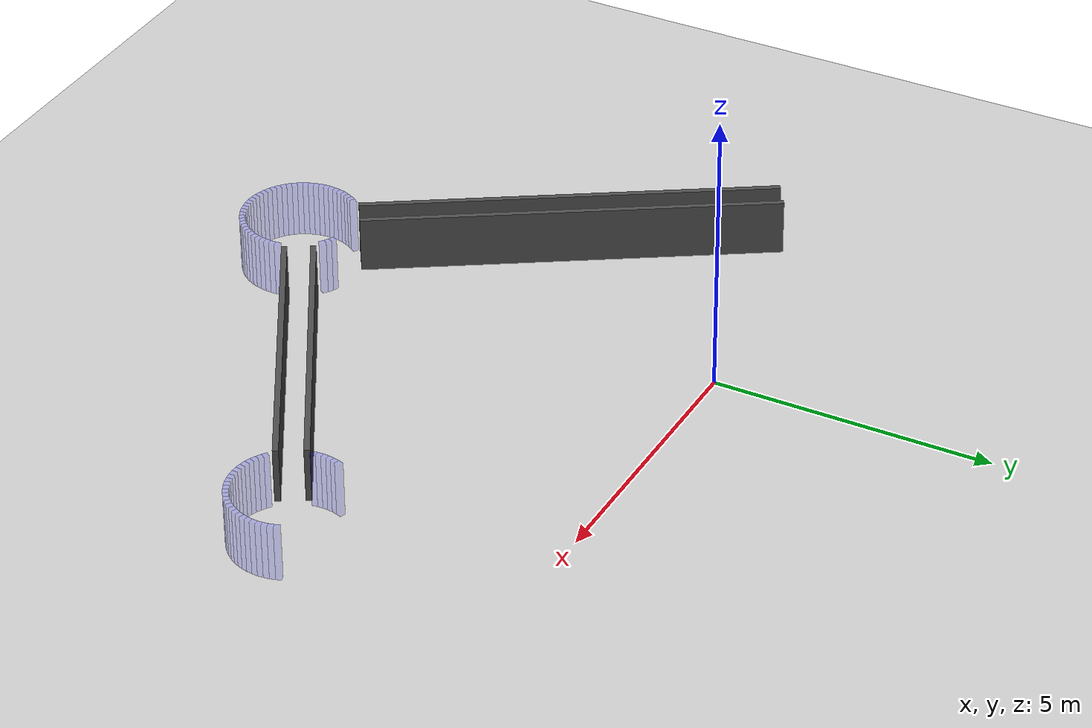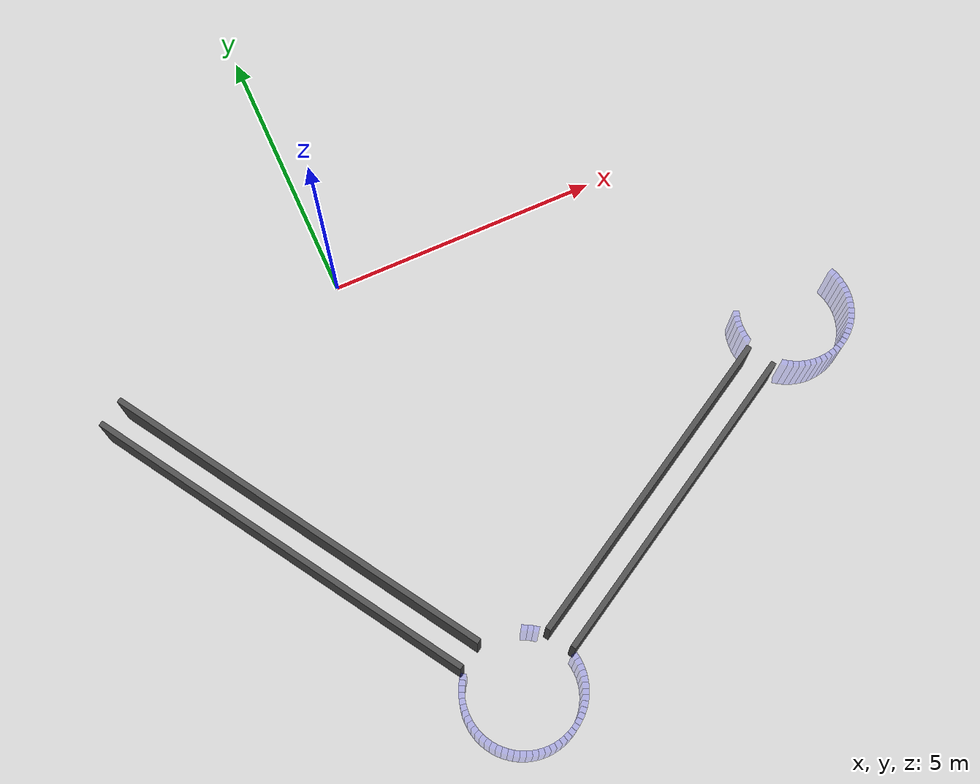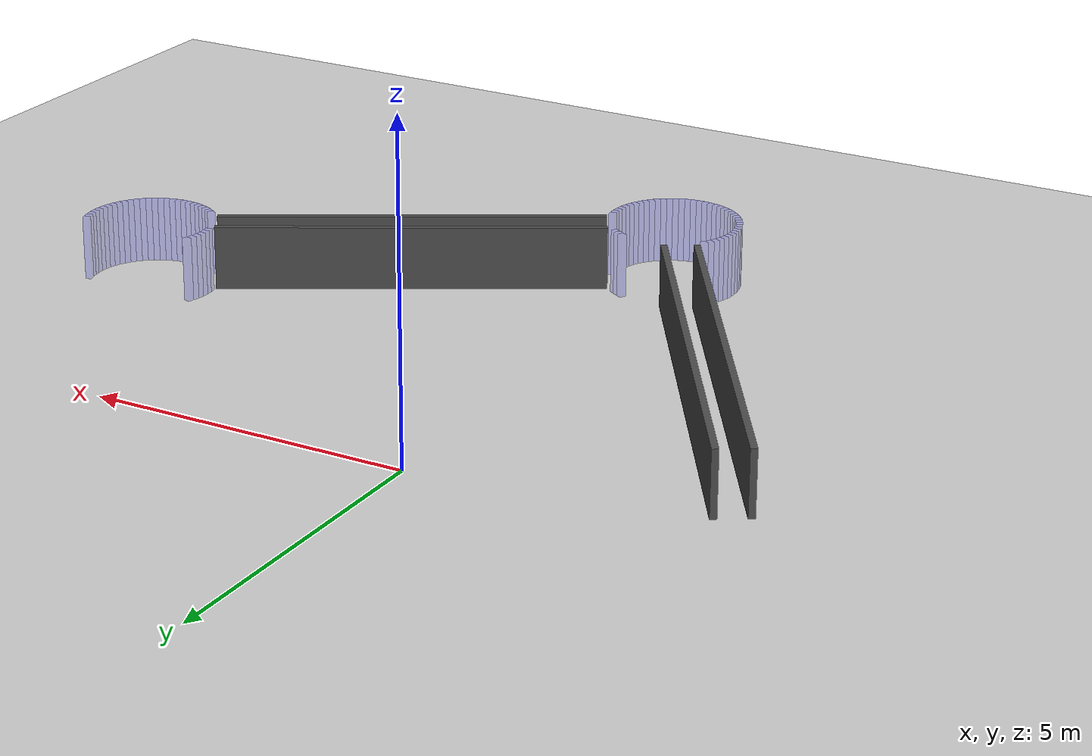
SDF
<sdf version="1.6">
 <world name="graph_routes">
  <include><uri>model://ground_plane</uri></include>
  <include><uri>model://sun</uri></include>
  <model name="node_A_seg0">
   <static>true</static>
   <pose>-0.998795 -8.049068 0.500 0 0 -1.521708941583</pose>
   <link name="link">
    <visual name="vis">
     <geometry><box><size>0.09817477042468103 0.1 1.0</size></box></geometry>
     <material>
      <ambient>0 0 1 0.05</ambient>
      <diffuse>0 0 1 0.05</diffuse>
      <specular>0.1 0.1 0.1 1</specular>
      <emissive>0 0 0 1</emissive>
     </material>
    </visual>
    <collision name="col"><geometry><box><size>0.09817477042468103 0.1 1.0</size></box></geometry></collision>
   </link>
  </model>
  <model name="node_A_seg1">
   <static>true</static>
   <pose>-0.989177 -8.146730 0.500 0 0 -1.423534171158</pose>
   <link name="link">
    <visual name="vis">
     <geometry><box><size>0.09817477042468103 0.1 1.0</size></box></geometry>
     <material>
      <ambient>0 0 1 0.05</ambient>
      <diffuse>0 0 1 0.05</diffuse>
      <specular>0.1 0.1 0.1 1</specular>
      <emissive>0 0 0 1</emissive>
     </material>
    </visual>
    <collision name="col"><geometry><box><size>0.09817477042468103 0.1 1.0</size></box></geometry></collision>
   </link>
  </model>
  <model name="node_A_seg2">
   <static>true</static>
   <pose>-0.970031 -8.242980 0.500 0 0 -1.325359400733</pose>
   <link name="link">
    <visual name="vis">
     <geometry><box><size>0.09817477042468103 0.1 1.0</size></box></geometry>
     <material>
      <ambient>0 0 1 0.05</ambient>
      <diffuse>0 0 1 0.05</diffuse>
      <specular>0.1 0.1 0.1 1</specular>
      <emissive>0 0 0 1</emissive>
     </material>
    </visual>
    <collision name="col"><geometry><box><size>0.09817477042468103 0.1 1.0</size></box></geometry></collision>
   </link>
  </model>
  <model name="node_A_seg3">
   <static>true</static>
   <pose>-0.941544 -8.336890 0.500 0 0 -1.227184630309</pose>
   <link name="link">
    <visual name="vis">
     <geometry><box><size>0.09817477042468103 0.1 1.0</size></box></geometry>
     <material>
      <ambient>0 0 1 0.05</ambient>
      <diffuse>0 0 1 0.05</diffuse>
      <specular>0.1 0.1 0.1 1</specular>
      <emissive>0 0 0 1</emissive>
     </material>
    </visual>
    <collision name="col"><geometry><box><size>0.09817477042468103 0.1 1.0</size></box></geometry></collision>
   </link>
  </model>
  <model name="node_A_seg4">
   <static>true</static>
   <pose>-0.903989 -8.427555 0.500 0 0 -1.129009859884</pose>
   <link name="link">
    <visual name="vis">
     <geometry><box><size>0.09817477042468103 0.1 1.0</size></box></geometry>
     <material>
      <ambient>0 0 1 0.05</ambient>
      <diffuse>0 0 1 0.05</diffuse>
      <specular>0.1 0.1 0.1 1</specular>
      <emissive>0 0 0 1</emissive>
     </material>
    </visual>
    <collision name="col"><geometry><box><size>0.09817477042468103 0.1 1.0</size></box></geometry></collision>
   </link>
  </model>
  <model name="node_A_seg5">
   <static>true</static>
   <pose>-0.857729 -8.514103 0.500 0 0 -1.030835089459</pose>
   <link name="link">
    <visual name="vis">
     <geometry><box><size>0.09817477042468103 0.1 1.0</size></box></geometry>
     <material>
      <ambient>0 0 1 0.05</ambient>
      <diffuse>0 0 1 0.05</diffuse>
      <specular>0.1 0.1 0.1 1</specular>
      <emissive>0 0 0 1</emissive>
     </material>
    </visual>
    <collision name="col"><geometry><box><size>0.09817477042468103 0.1 1.0</size></box></geometry></collision>
   </link>
  </model>
  <model name="node_A_seg6">
   <static>true</static>
   <pose>-0.803208 -8.595699 0.500 0 0 -0.932660319034</pose>
   <link name="link">
    <visual name="vis">
     <geometry><box><size>0.09817477042468103 0.1 1.0</size></box></geometry>
     <material>
      <ambient>0 0 1 0.05</ambient>
      <diffuse>0 0 1 0.05</diffuse>
      <specular>0.1 0.1 0.1 1</specular>
      <emissive>0 0 0 1</emissive>
     </material>
    </visual>
    <collision name="col"><geometry><box><size>0.09817477042468103 0.1 1.0</size></box></geometry></collision>
   </link>
  </model>
  <model name="node_A_seg7">
   <static>true</static>
   <pose>-0.740951 -8.671559 0.500 0 0 -0.834485548610</pose>
   <link name="link">
    <visual name="vis">
     <geometry><box><size>0.09817477042468103 0.1 1.0</size></box></geometry>
     <material>
      <ambient>0 0 1 0.05</ambient>
      <diffuse>0 0 1 0.05</diffuse>
      <specular>0.1 0.1 0.1 1</specular>
      <emissive>0 0 0 1</emissive>
     </material>
    </visual>
    <collision name="col"><geometry><box><size>0.09817477042468103 0.1 1.0</size></box></geometry></collision>
   </link>
  </model>
  <model name="node_A_seg8">
   <static>true</static>
   <pose>-0.671559 -8.740951 0.500 0 0 -0.736310778185</pose>
   <link name="link">
    <visual name="vis">
     <geometry><box><size>0.09817477042468103 0.1 1.0</size></box></geometry>
     <material>
      <ambient>0 0 1 0.05</ambient>
      <diffuse>0 0 1 0.05</diffuse>
      <specular>0.1 0.1 0.1 1</specular>
      <emissive>0 0 0 1</emissive>
     </material>
    </visual>
    <collision name="col"><geometry><box><size>0.09817477042468103 0.1 1.0</size></box></geometry></collision>
   </link>
  </model>
  <model name="node_A_seg9">
   <static>true</static>
   <pose>-0.595699 -8.803208 0.500 0 0 -0.638136007760</pose>
   <link name="link">
    <visual name="vis">
     <geometry><box><size>0.09817477042468103 0.1 1.0</size></box></geometry>
     <material>
      <ambient>0 0 1 0.05</ambient>
      <diffuse>0 0 1 0.05</diffuse>
      <specular>0.1 0.1 0.1 1</specular>
      <emissive>0 0 0 1</emissive>
     </material>
    </visual>
    <collision name="col"><geometry><box><size>0.09817477042468103 0.1 1.0</size></box></geometry></collision>
   </link>
  </model>
  <model name="node_A_seg10">
   <static>true</static>
   <pose>-0.514103 -8.857729 0.500 0 0 -0.539961237336</pose>
   <link name="link">
    <visual name="vis">
     <geometry><box><size>0.09817477042468103 0.1 1.0</size></box></geometry>
     <material>
      <ambient>0 0 1 0.05</ambient>
      <diffuse>0 0 1 0.05</diffuse>
      <specular>0.1 0.1 0.1 1</specular>
      <emissive>0 0 0 1</emissive>
     </material>
    </visual>
    <collision name="col"><geometry><box><size>0.09817477042468103 0.1 1.0</size></box></geometry></collision>
   </link>
  </model>
  <model name="node_A_seg11">
   <static>true</static>
   <pose>-0.427555 -8.903989 0.500 0 0 -0.441786466911</pose>
   <link name="link">
    <visual name="vis">
     <geometry><box><size>0.09817477042468103 0.1 1.0</size></box></geometry>
     <material>
      <ambient>0 0 1 0.05</ambient>
      <diffuse>0 0 1 0.05</diffuse>
      <specular>0.1 0.1 0.1 1</specular>
      <emissive>0 0 0 1</emissive>
     </material>
    </visual>
    <collision name="col"><geometry><box><size>0.09817477042468103 0.1 1.0</size></box></geometry></collision>
   </link>
  </model>
  <model name="node_A_seg12">
   <static>true</static>
   <pose>-0.336890 -8.941544 0.500 0 0 -0.343611696486</pose>
   <link name="link">
    <visual name="vis">
     <geometry><box><size>0.09817477042468103 0.1 1.0</size></box></geometry>
     <material>
      <ambient>0 0 1 0.05</ambient>
      <diffuse>0 0 1 0.05</diffuse>
      <specular>0.1 0.1 0.1 1</specular>
      <emissive>0 0 0 1</emissive>
     </material>
    </visual>
    <collision name="col"><geometry><box><size>0.09817477042468103 0.1 1.0</size></box></geometry></collision>
   </link>
  </model>
  <model name="node_A_seg13">
   <static>true</static>
   <pose>-0.242980 -8.970031 0.500 0 0 -0.245436926062</pose>
   <link name="link">
    <visual name="vis">
     <geometry><box><size>0.09817477042468103 0.1 1.0</size></box></geometry>
     <material>
      <ambient>0 0 1 0.05</ambient>
      <diffuse>0 0 1 0.05</diffuse>
      <specular>0.1 0.1 0.1 1</specular>
      <emissive>0 0 0 1</emissive>
     </material>
    </visual>
    <collision name="col"><geometry><box><size>0.09817477042468103 0.1 1.0</size></box></geometry></collision>
   </link>
  </model>
  <model name="node_A_seg14">
   <static>true</static>
   <pose>-0.146730 -8.989177 0.500 0 0 -0.147262155637</pose>
   <link name="link">
    <visual name="vis">
     <geometry><box><size>0.09817477042468103 0.1 1.0</size></box></geometry>
     <material>
      <ambient>0 0 1 0.05</ambient>
      <diffuse>0 0 1 0.05</diffuse>
      <specular>0.1 0.1 0.1 1</specular>
      <emissive>0 0 0 1</emissive>
     </material>
    </visual>
    <collision name="col"><geometry><box><size>0.09817477042468103 0.1 1.0</size></box></geometry></collision>
   </link>
  </model>
  <model name="node_A_seg15">
   <static>true</static>
   <pose>-0.049068 -8.998795 0.500 0 0 -0.049087385212</pose>
   <link name="link">
    <visual name="vis">
     <geometry><box><size>0.09817477042468103 0.1 1.0</size></box></geometry>
     <material>
      <ambient>0 0 1 0.05</ambient>
      <diffuse>0 0 1 0.05</diffuse>
      <specular>0.1 0.1 0.1 1</specular>
      <emissive>0 0 0 1</emissive>
     </material>
    </visual>
    <collision name="col"><geometry><box><size>0.09817477042468103 0.1 1.0</size></box></geometry></collision>
   </link>
  </model>
  <model name="node_A_seg16">
   <static>true</static>
   <pose>0.049068 -8.998795 0.500 0 0 0.049087385212</pose>
   <link name="link">
    <visual name="vis">
     <geometry><box><size>0.09817477042468103 0.1 1.0</size></box></geometry>
     <material>
      <ambient>0 0 1 0.05</ambient>
      <diffuse>0 0 1 0.05</diffuse>
      <specular>0.1 0.1 0.1 1</specular>
      <emissive>0 0 0 1</emissive>
     </material>
    </visual>
    <collision name="col"><geometry><box><size>0.09817477042468103 0.1 1.0</size></box></geometry></collision>
   </link>
  </model>
  <model name="node_A_seg17">
   <static>true</static>
   <pose>0.146730 -8.989177 0.500 0 0 0.147262155637</pose>
   <link name="link">
    <visual name="vis">
     <geometry><box><size>0.09817477042468103 0.1 1.0</size></box></geometry>
     <material>
      <ambient>0 0 1 0.05</ambient>
      <diffuse>0 0 1 0.05</diffuse>
      <specular>0.1 0.1 0.1 1</specular>
      <emissive>0 0 0 1</emissive>
     </material>
    </visual>
    <collision name="col"><geometry><box><size>0.09817477042468103 0.1 1.0</size></box></geometry></collision>
   </link>
  </model>
  <model name="node_A_seg18">
   <static>true</static>
   <pose>0.242980 -8.970031 0.500 0 0 0.245436926062</pose>
   <link name="link">
    <visual name="vis">
     <geometry><box><size>0.09817477042468103 0.1 1.0</size></box></geometry>
     <material>
      <ambient>0 0 1 0.05</ambient>
      <diffuse>0 0 1 0.05</diffuse>
      <specular>0.1 0.1 0.1 1</specular>
      <emissive>0 0 0 1</emissive>
     </material>
    </visual>
    <collision name="col"><geometry><box><size>0.09817477042468103 0.1 1.0</size></box></geometry></collision>
   </link>
  </model>
  <model name="node_A_seg19">
   <static>true</static>
   <pose>0.336890 -8.941544 0.500 0 0 0.343611696486</pose>
   <link name="link">
    <visual name="vis">
     <geometry><box><size>0.09817477042468103 0.1 1.0</size></box></geometry>
     <material>
      <ambient>0 0 1 0.05</ambient>
      <diffuse>0 0 1 0.05</diffuse>
      <specular>0.1 0.1 0.1 1</specular>
      <emissive>0 0 0 1</emissive>
     </material>
    </visual>
    <collision name="col"><geometry><box><size>0.09817477042468103 0.1 1.0</size></box></geometry></collision>
   </link>
  </model>
  <model name="node_A_seg20">
   <static>true</static>
   <pose>0.427555 -8.903989 0.500 0 0 0.441786466911</pose>
   <link name="link">
    <visual name="vis">
     <geometry><box><size>0.09817477042468103 0.1 1.0</size></box></geometry>
     <material>
      <ambient>0 0 1 0.05</ambient>
      <diffuse>0 0 1 0.05</diffuse>
      <specular>0.1 0.1 0.1 1</specular>
      <emissive>0 0 0 1</emissive>
     </material>
    </visual>
    <collision name="col"><geometry><box><size>0.09817477042468103 0.1 1.0</size></box></geometry></collision>
   </link>
  </model>
  <model name="node_A_seg21">
   <static>true</static>
   <pose>0.514103 -8.857729 0.500 0 0 0.539961237336</pose>
   <link name="link">
    <visual name="vis">
     <geometry><box><size>0.09817477042468103 0.1 1.0</size></box></geometry>
     <material>
      <ambient>0 0 1 0.05</ambient>
      <diffuse>0 0 1 0.05</diffuse>
      <specular>0.1 0.1 0.1 1</specular>
      <emissive>0 0 0 1</emissive>
     </material>
    </visual>
    <collision name="col"><geometry><box><size>0.09817477042468103 0.1 1.0</size></box></geometry></collision>
   </link>
  </model>
  <model name="node_A_seg22">
   <static>true</static>
   <pose>0.595699 -8.803208 0.500 0 0 0.638136007760</pose>
   <link name="link">
    <visual name="vis">
     <geometry><box><size>0.09817477042468103 0.1 1.0</size></box></geometry>
     <material>
      <ambient>0 0 1 0.05</ambient>
      <diffuse>0 0 1 0.05</diffuse>
      <specular>0.1 0.1 0.1 1</specular>
      <emissive>0 0 0 1</emissive>
     </material>
    </visual>
    <collision name="col"><geometry><box><size>0.09817477042468103 0.1 1.0</size></box></geometry></collision>
   </link>
  </model>
  <model name="node_A_seg23">
   <static>true</static>
   <pose>0.671559 -8.740951 0.500 0 0 0.736310778185</pose>
   <link name="link">
    <visual name="vis">
     <geometry><box><size>0.09817477042468103 0.1 1.0</size></box></geometry>
     <material>
      <ambient>0 0 1 0.05</ambient>
      <diffuse>0 0 1 0.05</diffuse>
      <specular>0.1 0.1 0.1 1</specular>
      <emissive>0 0 0 1</emissive>
     </material>
    </visual>
    <collision name="col"><geometry><box><size>0.09817477042468103 0.1 1.0</size></box></geometry></collision>
   </link>
  </model>
  <model name="node_A_seg24">
   <static>true</static>
   <pose>0.740951 -8.671559 0.500 0 0 0.834485548610</pose>
   <link name="link">
    <visual name="vis">
     <geometry><box><size>0.09817477042468103 0.1 1.0</size></box></geometry>
     <material>
      <ambient>0 0 1 0.05</ambient>
      <diffuse>0 0 1 0.05</diffuse>
      <specular>0.1 0.1 0.1 1</specular>
      <emissive>0 0 0 1</emissive>
     </material>
    </visual>
    <collision name="col"><geometry><box><size>0.09817477042468103 0.1 1.0</size></box></geometry></collision>
   </link>
  </model>
  <model name="node_A_seg25">
   <static>true</static>
   <pose>0.803208 -8.595699 0.500 0 0 0.932660319034</pose>
   <link name="link">
    <visual name="vis">
     <geometry><box><size>0.09817477042468103 0.1 1.0</size></box></geometry>
     <material>
      <ambient>0 0 1 0.05</ambient>
      <diffuse>0 0 1 0.05</diffuse>
      <specular>0.1 0.1 0.1 1</specular>
      <emissive>0 0 0 1</emissive>
     </material>
    </visual>
    <collision name="col"><geometry><box><size>0.09817477042468103 0.1 1.0</size></box></geometry></collision>
   </link>
  </model>
  <model name="node_A_seg26">
   <static>true</static>
   <pose>0.857729 -8.514103 0.500 0 0 1.030835089459</pose>
   <link name="link">
    <visual name="vis">
     <geometry><box><size>0.09817477042468103 0.1 1.0</size></box></geometry>
     <material>
      <ambient>0 0 1 0.05</ambient>
      <diffuse>0 0 1 0.05</diffuse>
      <specular>0.1 0.1 0.1 1</specular>
      <emissive>0 0 0 1</emissive>
     </material>
    </visual>
    <collision name="col"><geometry><box><size>0.09817477042468103 0.1 1.0</size></box></geometry></collision>
   </link>
  </model>
  <model name="node_A_seg27">
   <static>true</static>
   <pose>0.903989 -8.427555 0.500 0 0 1.129009859884</pose>
   <link name="link">
    <visual name="vis">
     <geometry><box><size>0.09817477042468103 0.1 1.0</size></box></geometry>
     <material>
      <ambient>0 0 1 0.05</ambient>
      <diffuse>0 0 1 0.05</diffuse>
      <specular>0.1 0.1 0.1 1</specular>
      <emissive>0 0 0 1</emissive>
     </material>
    </visual>
    <collision name="col"><geometry><box><size>0.09817477042468103 0.1 1.0</size></box></geometry></collision>
   </link>
  </model>
  <model name="node_A_seg28">
   <static>true</static>
   <pose>0.941544 -8.336890 0.500 0 0 1.227184630309</pose>
   <link name="link">
    <visual name="vis">
     <geometry><box><size>0.09817477042468103 0.1 1.0</size></box></geometry>
     <material>
      <ambient>0 0 1 0.05</ambient>
      <diffuse>0 0 1 0.05</diffuse>
      <specular>0.1 0.1 0.1 1</specular>
      <emissive>0 0 0 1</emissive>
     </material>
    </visual>
    <collision name="col"><geometry><box><size>0.09817477042468103 0.1 1.0</size></box></geometry></collision>
   </link>
  </model>
  <model name="node_A_seg29">
   <static>true</static>
   <pose>0.970031 -8.242980 0.500 0 0 1.325359400733</pose>
   <link name="link">
    <visual name="vis">
     <geometry><box><size>0.09817477042468103 0.1 1.0</size></box></geometry>
     <material>
      <ambient>0 0 1 0.05</ambient>
      <diffuse>0 0 1 0.05</diffuse>
      <specular>0.1 0.1 0.1 1</specular>
      <emissive>0 0 0 1</emissive>
     </material>
    </visual>
    <collision name="col"><geometry><box><size>0.09817477042468103 0.1 1.0</size></box></geometry></collision>
   </link>
  </model>
  <model name="node_A_seg30">
   <static>true</static>
   <pose>0.989177 -8.146730 0.500 0 0 1.423534171158</pose>
   <link name="link">
    <visual name="vis">
     <geometry><box><size>0.09817477042468103 0.1 1.0</size></box></geometry>
     <material>
      <ambient>0 0 1 0.05</ambient>
      <diffuse>0 0 1 0.05</diffuse>
      <specular>0.1 0.1 0.1 1</specular>
      <emissive>0 0 0 1</emissive>
     </material>
    </visual>
    <collision name="col"><geometry><box><size>0.09817477042468103 0.1 1.0</size></box></geometry></collision>
   </link>
  </model>
  <model name="node_A_seg31">
   <static>true</static>
   <pose>0.998795 -8.049068 0.500 0 0 1.521708941583</pose>
   <link name="link">
    <visual name="vis">
     <geometry><box><size>0.09817477042468103 0.1 1.0</size></box></geometry>
     <material>
      <ambient>0 0 1 0.05</ambient>
      <diffuse>0 0 1 0.05</diffuse>
      <specular>0.1 0.1 0.1 1</specular>
      <emissive>0 0 0 1</emissive>
     </material>
    </visual>
    <collision name="col"><geometry><box><size>0.09817477042468103 0.1 1.0</size></box></geometry></collision>
   </link>
  </model>
  <model name="node_A_seg32">
   <static>true</static>
   <pose>0.998795 -7.950932 0.500 0 0 1.619883712007</pose>
   <link name="link">
    <visual name="vis">
     <geometry><box><size>0.09817477042468103 0.1 1.0</size></box></geometry>
     <material>
      <ambient>0 0 1 0.05</ambient>
      <diffuse>0 0 1 0.05</diffuse>
      <specular>0.1 0.1 0.1 1</specular>
      <emissive>0 0 0 1</emissive>
     </material>
    </visual>
    <collision name="col"><geometry><box><size>0.09817477042468103 0.1 1.0</size></box></geometry></collision>
   </link>
  </model>
  <model name="node_A_seg33">
   <static>true</static>
   <pose>0.989177 -7.853270 0.500 0 0 1.718058482432</pose>
   <link name="link">
    <visual name="vis">
     <geometry><box><size>0.09817477042468103 0.1 1.0</size></box></geometry>
     <material>
      <ambient>0 0 1 0.05</ambient>
      <diffuse>0 0 1 0.05</diffuse>
      <specular>0.1 0.1 0.1 1</specular>
      <emissive>0 0 0 1</emissive>
     </material>
    </visual>
    <collision name="col"><geometry><box><size>0.09817477042468103 0.1 1.0</size></box></geometry></collision>
   </link>
  </model>
  <model name="node_A_seg41">
   <static>true</static>
   <pose>0.595699 -7.196792 0.500 0 0 2.503456645829</pose>
   <link name="link">
    <visual name="vis">
     <geometry><box><size>0.09817477042468103 0.1 1.0</size></box></geometry>
     <material>
      <ambient>0 0 1 0.05</ambient>
      <diffuse>0 0 1 0.05</diffuse>
      <specular>0.1 0.1 0.1 1</specular>
      <emissive>0 0 0 1</emissive>
     </material>
    </visual>
    <collision name="col"><geometry><box><size>0.09817477042468103 0.1 1.0</size></box></geometry></collision>
   </link>
  </model>
  <model name="node_A_seg42">
   <static>true</static>
   <pose>0.514103 -7.142271 0.500 0 0 2.601631416254</pose>
   <link name="link">
    <visual name="vis">
     <geometry><box><size>0.09817477042468103 0.1 1.0</size></box></geometry>
     <material>
      <ambient>0 0 1 0.05</ambient>
      <diffuse>0 0 1 0.05</diffuse>
      <specular>0.1 0.1 0.1 1</specular>
      <emissive>0 0 0 1</emissive>
     </material>
    </visual>
    <collision name="col"><geometry><box><size>0.09817477042468103 0.1 1.0</size></box></geometry></collision>
   </link>
  </model>
  <model name="node_A_seg43">
   <static>true</static>
   <pose>0.427555 -7.096011 0.500 0 0 2.699806186679</pose>
   <link name="link">
    <visual name="vis">
     <geometry><box><size>0.09817477042468103 0.1 1.0</size></box></geometry>
     <material>
      <ambient>0 0 1 0.05</ambient>
      <diffuse>0 0 1 0.05</diffuse>
      <specular>0.1 0.1 0.1 1</specular>
      <emissive>0 0 0 1</emissive>
     </material>
    </visual>
    <collision name="col"><geometry><box><size>0.09817477042468103 0.1 1.0</size></box></geometry></collision>
   </link>
  </model>
  <model name="node_A_seg57">
   <static>true</static>
   <pose>-0.803208 -7.404301 0.500 0 0 4.074252972624</pose>
   <link name="link">
    <visual name="vis">
     <geometry><box><size>0.09817477042468103 0.1 1.0</size></box></geometry>
     <material>
      <ambient>0 0 1 0.05</ambient>
      <diffuse>0 0 1 0.05</diffuse>
      <specular>0.1 0.1 0.1 1</specular>
      <emissive>0 0 0 1</emissive>
     </material>
    </visual>
    <collision name="col"><geometry><box><size>0.09817477042468103 0.1 1.0</size></box></geometry></collision>
   </link>
  </model>
  <model name="node_A_seg58">
   <static>true</static>
   <pose>-0.857729 -7.485897 0.500 0 0 4.172427743049</pose>
   <link name="link">
    <visual name="vis">
     <geometry><box><size>0.09817477042468103 0.1 1.0</size></box></geometry>
     <material>
      <ambient>0 0 1 0.05</ambient>
      <diffuse>0 0 1 0.05</diffuse>
      <specular>0.1 0.1 0.1 1</specular>
      <emissive>0 0 0 1</emissive>
     </material>
    </visual>
    <collision name="col"><geometry><box><size>0.09817477042468103 0.1 1.0</size></box></geometry></collision>
   </link>
  </model>
  <model name="node_A_seg59">
   <static>true</static>
   <pose>-0.903989 -7.572445 0.500 0 0 4.270602513474</pose>
   <link name="link">
    <visual name="vis">
     <geometry><box><size>0.09817477042468103 0.1 1.0</size></box></geometry>
     <material>
      <ambient>0 0 1 0.05</ambient>
      <diffuse>0 0 1 0.05</diffuse>
      <specular>0.1 0.1 0.1 1</specular>
      <emissive>0 0 0 1</emissive>
     </material>
    </visual>
    <collision name="col"><geometry><box><size>0.09817477042468103 0.1 1.0</size></box></geometry></collision>
   </link>
  </model>
  <model name="node_A_seg60">
   <static>true</static>
   <pose>-0.941544 -7.663110 0.500 0 0 4.368777283898</pose>
   <link name="link">
    <visual name="vis">
     <geometry><box><size>0.09817477042468103 0.1 1.0</size></box></geometry>
     <material>
      <ambient>0 0 1 0.05</ambient>
      <diffuse>0 0 1 0.05</diffuse>
      <specular>0.1 0.1 0.1 1</specular>
      <emissive>0 0 0 1</emissive>
     </material>
    </visual>
    <collision name="col"><geometry><box><size>0.09817477042468103 0.1 1.0</size></box></geometry></collision>
   </link>
  </model>
  <model name="node_A_seg61">
   <static>true</static>
   <pose>-0.970031 -7.757020 0.500 0 0 4.466952054323</pose>
   <link name="link">
    <visual name="vis">
     <geometry><box><size>0.09817477042468103 0.1 1.0</size></box></geometry>
     <material>
      <ambient>0 0 1 0.05</ambient>
      <diffuse>0 0 1 0.05</diffuse>
      <specular>0.1 0.1 0.1 1</specular>
      <emissive>0 0 0 1</emissive>
     </material>
    </visual>
    <collision name="col"><geometry><box><size>0.09817477042468103 0.1 1.0</size></box></geometry></collision>
   </link>
  </model>
  <model name="node_A_seg62">
   <static>true</static>
   <pose>-0.989177 -7.853270 0.500 0 0 4.565126824748</pose>
   <link name="link">
    <visual name="vis">
     <geometry><box><size>0.09817477042468103 0.1 1.0</size></box></geometry>
     <material>
      <ambient>0 0 1 0.05</ambient>
      <diffuse>0 0 1 0.05</diffuse>
      <specular>0.1 0.1 0.1 1</specular>
      <emissive>0 0 0 1</emissive>
     </material>
    </visual>
    <collision name="col"><geometry><box><size>0.09817477042468103 0.1 1.0</size></box></geometry></collision>
   </link>
  </model>
  <model name="node_A_seg63">
   <static>true</static>
   <pose>-0.998795 -7.950932 0.500 0 0 4.663301595172</pose>
   <link name="link">
    <visual name="vis">
     <geometry><box><size>0.09817477042468103 0.1 1.0</size></box></geometry>
     <material>
      <ambient>0 0 1 0.05</ambient>
      <diffuse>0 0 1 0.05</diffuse>
      <specular>0.1 0.1 0.1 1</specular>
      <emissive>0 0 0 1</emissive>
     </material>
    </visual>
    <collision name="col"><geometry><box><size>0.09817477042468103 0.1 1.0</size></box></geometry></collision>
   </link>
  </model>
  <model name="node_B_seg0">
   <static>true</static>
   <pose>6.001205 -4.049068 0.500 0 0 -1.521708941583</pose>
   <link name="link">
    <visual name="vis">
     <geometry><box><size>0.09817477042468103 0.1 1.0</size></box></geometry>
     <material>
      <ambient>0 0 1 0.05</ambient>
      <diffuse>0 0 1 0.05</diffuse>
      <specular>0.1 0.1 0.1 1</specular>
      <emissive>0 0 0 1</emissive>
     </material>
    </visual>
    <collision name="col"><geometry><box><size>0.09817477042468103 0.1 1.0</size></box></geometry></collision>
   </link>
  </model>
  <model name="node_B_seg1">
   <static>true</static>
   <pose>6.010823 -4.146730 0.500 0 0 -1.423534171158</pose>
   <link name="link">
    <visual name="vis">
     <geometry><box><size>0.09817477042468103 0.1 1.0</size></box></geometry>
     <material>
      <ambient>0 0 1 0.05</ambient>
      <diffuse>0 0 1 0.05</diffuse>
      <specular>0.1 0.1 0.1 1</specular>
      <emissive>0 0 0 1</emissive>
     </material>
    </visual>
    <collision name="col"><geometry><box><size>0.09817477042468103 0.1 1.0</size></box></geometry></collision>
   </link>
  </model>
  <model name="node_B_seg9">
   <static>true</static>
   <pose>6.404301 -4.803208 0.500 0 0 -0.638136007760</pose>
   <link name="link">
    <visual name="vis">
     <geometry><box><size>0.09817477042468103 0.1 1.0</size></box></geometry>
     <material>
      <ambient>0 0 1 0.05</ambient>
      <diffuse>0 0 1 0.05</diffuse>
      <specular>0.1 0.1 0.1 1</specular>
      <emissive>0 0 0 1</emissive>
     </material>
    </visual>
    <collision name="col"><geometry><box><size>0.09817477042468103 0.1 1.0</size></box></geometry></collision>
   </link>
  </model>
  <model name="node_B_seg10">
   <static>true</static>
   <pose>6.485897 -4.857729 0.500 0 0 -0.539961237336</pose>
   <link name="link">
    <visual name="vis">
     <geometry><box><size>0.09817477042468103 0.1 1.0</size></box></geometry>
     <material>
      <ambient>0 0 1 0.05</ambient>
      <diffuse>0 0 1 0.05</diffuse>
      <specular>0.1 0.1 0.1 1</specular>
      <emissive>0 0 0 1</emissive>
     </material>
    </visual>
    <collision name="col"><geometry><box><size>0.09817477042468103 0.1 1.0</size></box></geometry></collision>
   </link>
  </model>
  <model name="node_B_seg11">
   <static>true</static>
   <pose>6.572445 -4.903989 0.500 0 0 -0.441786466911</pose>
   <link name="link">
    <visual name="vis">
     <geometry><box><size>0.09817477042468103 0.1 1.0</size></box></geometry>
     <material>
      <ambient>0 0 1 0.05</ambient>
      <diffuse>0 0 1 0.05</diffuse>
      <specular>0.1 0.1 0.1 1</specular>
      <emissive>0 0 0 1</emissive>
     </material>
    </visual>
    <collision name="col"><geometry><box><size>0.09817477042468103 0.1 1.0</size></box></geometry></collision>
   </link>
  </model>
  <model name="node_B_seg12">
   <static>true</static>
   <pose>6.663110 -4.941544 0.500 0 0 -0.343611696486</pose>
   <link name="link">
    <visual name="vis">
     <geometry><box><size>0.09817477042468103 0.1 1.0</size></box></geometry>
     <material>
      <ambient>0 0 1 0.05</ambient>
      <diffuse>0 0 1 0.05</diffuse>
      <specular>0.1 0.1 0.1 1</specular>
      <emissive>0 0 0 1</emissive>
     </material>
    </visual>
    <collision name="col"><geometry><box><size>0.09817477042468103 0.1 1.0</size></box></geometry></collision>
   </link>
  </model>
  <model name="node_B_seg13">
   <static>true</static>
   <pose>6.757020 -4.970031 0.500 0 0 -0.245436926062</pose>
   <link name="link">
    <visual name="vis">
     <geometry><box><size>0.09817477042468103 0.1 1.0</size></box></geometry>
     <material>
      <ambient>0 0 1 0.05</ambient>
      <diffuse>0 0 1 0.05</diffuse>
      <specular>0.1 0.1 0.1 1</specular>
      <emissive>0 0 0 1</emissive>
     </material>
    </visual>
    <collision name="col"><geometry><box><size>0.09817477042468103 0.1 1.0</size></box></geometry></collision>
   </link>
  </model>
  <model name="node_B_seg14">
   <static>true</static>
   <pose>6.853270 -4.989177 0.500 0 0 -0.147262155637</pose>
   <link name="link">
    <visual name="vis">
     <geometry><box><size>0.09817477042468103 0.1 1.0</size></box></geometry>
     <material>
      <ambient>0 0 1 0.05</ambient>
      <diffuse>0 0 1 0.05</diffuse>
      <specular>0.1 0.1 0.1 1</specular>
      <emissive>0 0 0 1</emissive>
     </material>
    </visual>
    <collision name="col"><geometry><box><size>0.09817477042468103 0.1 1.0</size></box></geometry></collision>
   </link>
  </model>
  <model name="node_B_seg15">
   <static>true</static>
   <pose>6.950932 -4.998795 0.500 0 0 -0.049087385212</pose>
   <link name="link">
    <visual name="vis">
     <geometry><box><size>0.09817477042468103 0.1 1.0</size></box></geometry>
     <material>
      <ambient>0 0 1 0.05</ambient>
      <diffuse>0 0 1 0.05</diffuse>
      <specular>0.1 0.1 0.1 1</specular>
      <emissive>0 0 0 1</emissive>
     </material>
    </visual>
    <collision name="col"><geometry><box><size>0.09817477042468103 0.1 1.0</size></box></geometry></collision>
   </link>
  </model>
  <model name="node_B_seg16">
   <static>true</static>
   <pose>7.049068 -4.998795 0.500 0 0 0.049087385212</pose>
   <link name="link">
    <visual name="vis">
     <geometry><box><size>0.09817477042468103 0.1 1.0</size></box></geometry>
     <material>
      <ambient>0 0 1 0.05</ambient>
      <diffuse>0 0 1 0.05</diffuse>
      <specular>0.1 0.1 0.1 1</specular>
      <emissive>0 0 0 1</emissive>
     </material>
    </visual>
    <collision name="col"><geometry><box><size>0.09817477042468103 0.1 1.0</size></box></geometry></collision>
   </link>
  </model>
  <model name="node_B_seg17">
   <static>true</static>
   <pose>7.146730 -4.989177 0.500 0 0 0.147262155637</pose>
   <link name="link">
    <visual name="vis">
     <geometry><box><size>0.09817477042468103 0.1 1.0</size></box></geometry>
     <material>
      <ambient>0 0 1 0.05</ambient>
      <diffuse>0 0 1 0.05</diffuse>
      <specular>0.1 0.1 0.1 1</specular>
      <emissive>0 0 0 1</emissive>
     </material>
    </visual>
    <collision name="col"><geometry><box><size>0.09817477042468103 0.1 1.0</size></box></geometry></collision>
   </link>
  </model>
  <model name="node_B_seg18">
   <static>true</static>
   <pose>7.242980 -4.970031 0.500 0 0 0.245436926062</pose>
   <link name="link">
    <visual name="vis">
     <geometry><box><size>0.09817477042468103 0.1 1.0</size></box></geometry>
     <material>
      <ambient>0 0 1 0.05</ambient>
      <diffuse>0 0 1 0.05</diffuse>
      <specular>0.1 0.1 0.1 1</specular>
      <emissive>0 0 0 1</emissive>
     </material>
    </visual>
    <collision name="col"><geometry><box><size>0.09817477042468103 0.1 1.0</size></box></geometry></collision>
   </link>
  </model>
  <model name="node_B_seg19">
   <static>true</static>
   <pose>7.336890 -4.941544 0.500 0 0 0.343611696486</pose>
   <link name="link">
    <visual name="vis">
     <geometry><box><size>0.09817477042468103 0.1 1.0</size></box></geometry>
     <material>
      <ambient>0 0 1 0.05</ambient>
      <diffuse>0 0 1 0.05</diffuse>
      <specular>0.1 0.1 0.1 1</specular>
      <emissive>0 0 0 1</emissive>
     </material>
    </visual>
    <collision name="col"><geometry><box><size>0.09817477042468103 0.1 1.0</size></box></geometry></collision>
   </link>
  </model>
  <model name="node_B_seg20">
   <static>true</static>
   <pose>7.427555 -4.903989 0.500 0 0 0.441786466911</pose>
   <link name="link">
    <visual name="vis">
     <geometry><box><size>0.09817477042468103 0.1 1.0</size></box></geometry>
     <material>
      <ambient>0 0 1 0.05</ambient>
      <diffuse>0 0 1 0.05</diffuse>
      <specular>0.1 0.1 0.1 1</specular>
      <emissive>0 0 0 1</emissive>
     </material>
    </visual>
    <collision name="col"><geometry><box><size>0.09817477042468103 0.1 1.0</size></box></geometry></collision>
   </link>
  </model>
  <model name="node_B_seg21">
   <static>true</static>
   <pose>7.514103 -4.857729 0.500 0 0 0.539961237336</pose>
   <link name="link">
    <visual name="vis">
     <geometry><box><size>0.09817477042468103 0.1 1.0</size></box></geometry>
     <material>
      <ambient>0 0 1 0.05</ambient>
      <diffuse>0 0 1 0.05</diffuse>
      <specular>0.1 0.1 0.1 1</specular>
      <emissive>0 0 0 1</emissive>
     </material>
    </visual>
    <collision name="col"><geometry><box><size>0.09817477042468103 0.1 1.0</size></box></geometry></collision>
   </link>
  </model>
  <model name="node_B_seg22">
   <static>true</static>
   <pose>7.595699 -4.803208 0.500 0 0 0.638136007760</pose>
   <link name="link">
    <visual name="vis">
     <geometry><box><size>0.09817477042468103 0.1 1.0</size></box></geometry>
     <material>
      <ambient>0 0 1 0.05</ambient>
      <diffuse>0 0 1 0.05</diffuse>
      <specular>0.1 0.1 0.1 1</specular>
      <emissive>0 0 0 1</emissive>
     </material>
    </visual>
    <collision name="col"><geometry><box><size>0.09817477042468103 0.1 1.0</size></box></geometry></collision>
   </link>
  </model>
  <model name="node_B_seg23">
   <static>true</static>
   <pose>7.671559 -4.740951 0.500 0 0 0.736310778185</pose>
   <link name="link">
    <visual name="vis">
     <geometry><box><size>0.09817477042468103 0.1 1.0</size></box></geometry>
     <material>
      <ambient>0 0 1 0.05</ambient>
      <diffuse>0 0 1 0.05</diffuse>
      <specular>0.1 0.1 0.1 1</specular>
      <emissive>0 0 0 1</emissive>
     </material>
    </visual>
    <collision name="col"><geometry><box><size>0.09817477042468103 0.1 1.0</size></box></geometry></collision>
   </link>
  </model>
  <model name="node_B_seg24">
   <static>true</static>
   <pose>7.740951 -4.671559 0.500 0 0 0.834485548610</pose>
   <link name="link">
    <visual name="vis">
     <geometry><box><size>0.09817477042468103 0.1 1.0</size></box></geometry>
     <material>
      <ambient>0 0 1 0.05</ambient>
      <diffuse>0 0 1 0.05</diffuse>
      <specular>0.1 0.1 0.1 1</specular>
      <emissive>0 0 0 1</emissive>
     </material>
    </visual>
    <collision name="col"><geometry><box><size>0.09817477042468103 0.1 1.0</size></box></geometry></collision>
   </link>
  </model>
  <model name="node_B_seg25">
   <static>true</static>
   <pose>7.803208 -4.595699 0.500 0 0 0.932660319034</pose>
   <link name="link">
    <visual name="vis">
     <geometry><box><size>0.09817477042468103 0.1 1.0</size></box></geometry>
     <material>
      <ambient>0 0 1 0.05</ambient>
      <diffuse>0 0 1 0.05</diffuse>
      <specular>0.1 0.1 0.1 1</specular>
      <emissive>0 0 0 1</emissive>
     </material>
    </visual>
    <collision name="col"><geometry><box><size>0.09817477042468103 0.1 1.0</size></box></geometry></collision>
   </link>
  </model>
  <model name="node_B_seg26">
   <static>true</static>
   <pose>7.857729 -4.514103 0.500 0 0 1.030835089459</pose>
   <link name="link">
    <visual name="vis">
     <geometry><box><size>0.09817477042468103 0.1 1.0</size></box></geometry>
     <material>
      <ambient>0 0 1 0.05</ambient>
      <diffuse>0 0 1 0.05</diffuse>
      <specular>0.1 0.1 0.1 1</specular>
      <emissive>0 0 0 1</emissive>
     </material>
    </visual>
    <collision name="col"><geometry><box><size>0.09817477042468103 0.1 1.0</size></box></geometry></collision>
   </link>
  </model>
  <model name="node_B_seg27">
   <static>true</static>
   <pose>7.903989 -4.427555 0.500 0 0 1.129009859884</pose>
   <link name="link">
    <visual name="vis">
     <geometry><box><size>0.09817477042468103 0.1 1.0</size></box></geometry>
     <material>
      <ambient>0 0 1 0.05</ambient>
      <diffuse>0 0 1 0.05</diffuse>
      <specular>0.1 0.1 0.1 1</specular>
      <emissive>0 0 0 1</emissive>
     </material>
    </visual>
    <collision name="col"><geometry><box><size>0.09817477042468103 0.1 1.0</size></box></geometry></collision>
   </link>
  </model>
  <model name="node_B_seg28">
   <static>true</static>
   <pose>7.941544 -4.336890 0.500 0 0 1.227184630309</pose>
   <link name="link">
    <visual name="vis">
     <geometry><box><size>0.09817477042468103 0.1 1.0</size></box></geometry>
     <material>
      <ambient>0 0 1 0.05</ambient>
      <diffuse>0 0 1 0.05</diffuse>
      <specular>0.1 0.1 0.1 1</specular>
      <emissive>0 0 0 1</emissive>
     </material>
    </visual>
    <collision name="col"><geometry><box><size>0.09817477042468103 0.1 1.0</size></box></geometry></collision>
   </link>
  </model>
  <model name="node_B_seg29">
   <static>true</static>
   <pose>7.970031 -4.242980 0.500 0 0 1.325359400733</pose>
   <link name="link">
    <visual name="vis">
     <geometry><box><size>0.09817477042468103 0.1 1.0</size></box></geometry>
     <material>
      <ambient>0 0 1 0.05</ambient>
      <diffuse>0 0 1 0.05</diffuse>
      <specular>0.1 0.1 0.1 1</specular>
      <emissive>0 0 0 1</emissive>
     </material>
    </visual>
    <collision name="col"><geometry><box><size>0.09817477042468103 0.1 1.0</size></box></geometry></collision>
   </link>
  </model>
  <model name="node_B_seg30">
   <static>true</static>
   <pose>7.989177 -4.146730 0.500 0 0 1.423534171158</pose>
   <link name="link">
    <visual name="vis">
     <geometry><box><size>0.09817477042468103 0.1 1.0</size></box></geometry>
     <material>
      <ambient>0 0 1 0.05</ambient>
      <diffuse>0 0 1 0.05</diffuse>
      <specular>0.1 0.1 0.1 1</specular>
      <emissive>0 0 0 1</emissive>
     </material>
    </visual>
    <collision name="col"><geometry><box><size>0.09817477042468103 0.1 1.0</size></box></geometry></collision>
   </link>
  </model>
  <model name="node_B_seg31">
   <static>true</static>
   <pose>7.998795 -4.049068 0.500 0 0 1.521708941583</pose>
   <link name="link">
    <visual name="vis">
     <geometry><box><size>0.09817477042468103 0.1 1.0</size></box></geometry>
     <material>
      <ambient>0 0 1 0.05</ambient>
      <diffuse>0 0 1 0.05</diffuse>
      <specular>0.1 0.1 0.1 1</specular>
      <emissive>0 0 0 1</emissive>
     </material>
    </visual>
    <collision name="col"><geometry><box><size>0.09817477042468103 0.1 1.0</size></box></geometry></collision>
   </link>
  </model>
  <model name="node_B_seg32">
   <static>true</static>
   <pose>7.998795 -3.950932 0.500 0 0 1.619883712007</pose>
   <link name="link">
    <visual name="vis">
     <geometry><box><size>0.09817477042468103 0.1 1.0</size></box></geometry>
     <material>
      <ambient>0 0 1 0.05</ambient>
      <diffuse>0 0 1 0.05</diffuse>
      <specular>0.1 0.1 0.1 1</specular>
      <emissive>0 0 0 1</emissive>
     </material>
    </visual>
    <collision name="col"><geometry><box><size>0.09817477042468103 0.1 1.0</size></box></geometry></collision>
   </link>
  </model>
  <model name="node_B_seg33">
   <static>true</static>
   <pose>7.989177 -3.853270 0.500 0 0 1.718058482432</pose>
   <link name="link">
    <visual name="vis">
     <geometry><box><size>0.09817477042468103 0.1 1.0</size></box></geometry>
     <material>
      <ambient>0 0 1 0.05</ambient>
      <diffuse>0 0 1 0.05</diffuse>
      <specular>0.1 0.1 0.1 1</specular>
      <emissive>0 0 0 1</emissive>
     </material>
    </visual>
    <collision name="col"><geometry><box><size>0.09817477042468103 0.1 1.0</size></box></geometry></collision>
   </link>
  </model>
  <model name="node_B_seg34">
   <static>true</static>
   <pose>7.970031 -3.757020 0.500 0 0 1.816233252857</pose>
   <link name="link">
    <visual name="vis">
     <geometry><box><size>0.09817477042468103 0.1 1.0</size></box></geometry>
     <material>
      <ambient>0 0 1 0.05</ambient>
      <diffuse>0 0 1 0.05</diffuse>
      <specular>0.1 0.1 0.1 1</specular>
      <emissive>0 0 0 1</emissive>
     </material>
    </visual>
    <collision name="col"><geometry><box><size>0.09817477042468103 0.1 1.0</size></box></geometry></collision>
   </link>
  </model>
  <model name="node_B_seg35">
   <static>true</static>
   <pose>7.941544 -3.663110 0.500 0 0 1.914408023281</pose>
   <link name="link">
    <visual name="vis">
     <geometry><box><size>0.09817477042468103 0.1 1.0</size></box></geometry>
     <material>
      <ambient>0 0 1 0.05</ambient>
      <diffuse>0 0 1 0.05</diffuse>
      <specular>0.1 0.1 0.1 1</specular>
      <emissive>0 0 0 1</emissive>
     </material>
    </visual>
    <collision name="col"><geometry><box><size>0.09817477042468103 0.1 1.0</size></box></geometry></collision>
   </link>
  </model>
  <model name="node_B_seg60">
   <static>true</static>
   <pose>6.058456 -3.663110 0.500 0 0 4.368777283898</pose>
   <link name="link">
    <visual name="vis">
     <geometry><box><size>0.09817477042468103 0.1 1.0</size></box></geometry>
     <material>
      <ambient>0 0 1 0.05</ambient>
      <diffuse>0 0 1 0.05</diffuse>
      <specular>0.1 0.1 0.1 1</specular>
      <emissive>0 0 0 1</emissive>
     </material>
    </visual>
    <collision name="col"><geometry><box><size>0.09817477042468103 0.1 1.0</size></box></geometry></collision>
   </link>
  </model>
  <model name="node_B_seg61">
   <static>true</static>
   <pose>6.029969 -3.757020 0.500 0 0 4.466952054323</pose>
   <link name="link">
    <visual name="vis">
     <geometry><box><size>0.09817477042468103 0.1 1.0</size></box></geometry>
     <material>
      <ambient>0 0 1 0.05</ambient>
      <diffuse>0 0 1 0.05</diffuse>
      <specular>0.1 0.1 0.1 1</specular>
      <emissive>0 0 0 1</emissive>
     </material>
    </visual>
    <collision name="col"><geometry><box><size>0.09817477042468103 0.1 1.0</size></box></geometry></collision>
   </link>
  </model>
  <model name="node_B_seg62">
   <static>true</static>
   <pose>6.010823 -3.853270 0.500 0 0 4.565126824748</pose>
   <link name="link">
    <visual name="vis">
     <geometry><box><size>0.09817477042468103 0.1 1.0</size></box></geometry>
     <material>
      <ambient>0 0 1 0.05</ambient>
      <diffuse>0 0 1 0.05</diffuse>
      <specular>0.1 0.1 0.1 1</specular>
      <emissive>0 0 0 1</emissive>
     </material>
    </visual>
    <collision name="col"><geometry><box><size>0.09817477042468103 0.1 1.0</size></box></geometry></collision>
   </link>
  </model>
  <model name="node_B_seg63">
   <static>true</static>
   <pose>6.001205 -3.950932 0.500 0 0 4.663301595172</pose>
   <link name="link">
    <visual name="vis">
     <geometry><box><size>0.09817477042468103 0.1 1.0</size></box></geometry>
     <material>
      <ambient>0 0 1 0.05</ambient>
      <diffuse>0 0 1 0.05</diffuse>
      <specular>0.1 0.1 0.1 1</specular>
      <emissive>0 0 0 1</emissive>
     </material>
    </visual>
    <collision name="col"><geometry><box><size>0.09817477042468103 0.1 1.0</size></box></geometry></collision>
   </link>
  </model>
  <model name="edge0_L">
   <static>true</static>
   <pose>-2.712000 -4.132500 0.500 0 0 2.129395642138</pose>
   <link name="link">
    <visual name="vis">
     <geometry><box><size>7.383981132056603 0.1 1.0</size></box></geometry>
     <material>
      <script><uri>file://media/materials/scripts/gazebo.material</uri><name>Gazebo/DarkGrey</name></script>
     </material>
    </visual>
    <collision name="col"><geometry><box><size>7.383981132056603 0.1 1.0</size></box></geometry></collision>
   </link>
  </model>
  <model name="edge0_R">
   <static>true</static>
   <pose>-2.288000 -3.867500 0.500 0 0 2.129395642138</pose>
   <link name="link">
    <visual name="vis">
     <geometry><box><size>7.383981132056603 0.1 1.0</size></box></geometry>
     <material>
      <script><uri>file://media/materials/scripts/gazebo.material</uri><name>Gazebo/DarkGrey</name></script>
     </material>
    </visual>
    <collision name="col"><geometry><box><size>7.383981132056603 0.1 1.0</size></box></geometry></collision>
   </link>
  </model>
  <model name="edge3_L">
   <static>true</static>
   <pose>3.375965 -5.782939 0.500 0 0 0.519146114247</pose>
   <link name="link">
    <visual name="vis">
     <geometry><box><size>6.012257748298549 0.1 1.0</size></box></geometry>
     <material>
      <script><uri>file://media/materials/scripts/gazebo.material</uri><name>Gazebo/DarkGrey</name></script>
     </material>
    </visual>
    <collision name="col"><geometry><box><size>6.012257748298549 0.1 1.0</size></box></geometry></collision>
   </link>
  </model>
  <model name="edge3_R">
   <static>true</static>
   <pose>3.624035 -6.217061 0.500 0 0 0.519146114247</pose>
   <link name="link">
    <visual name="vis">
     <geometry><box><size>6.012257748298549 0.1 1.0</size></box></geometry>
     <material>
      <script><uri>file://media/materials/scripts/gazebo.material</uri><name>Gazebo/DarkGrey</name></script>
     </material>
    </visual>
    <collision name="col"><geometry><box><size>6.012257748298549 0.1 1.0</size></box></geometry></collision>
   </link>
  </model>
 </world>
</sdf>
